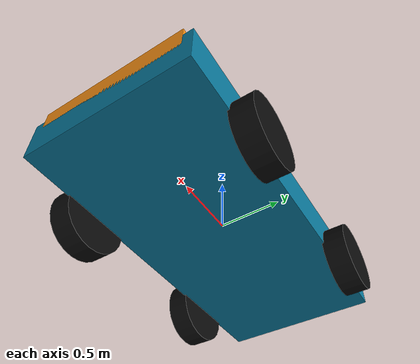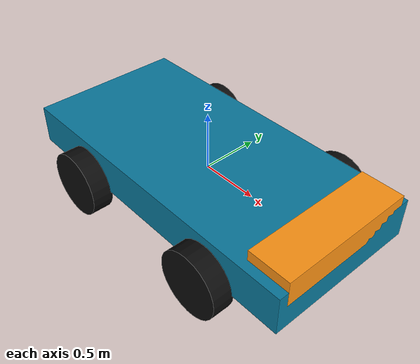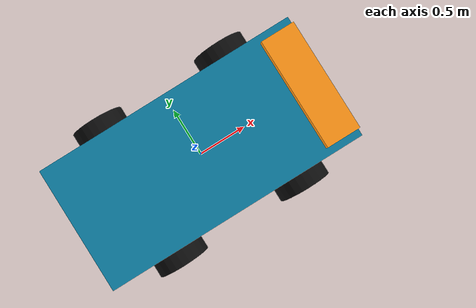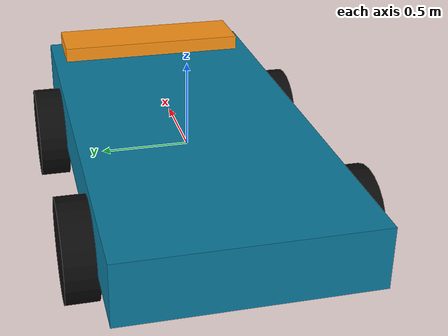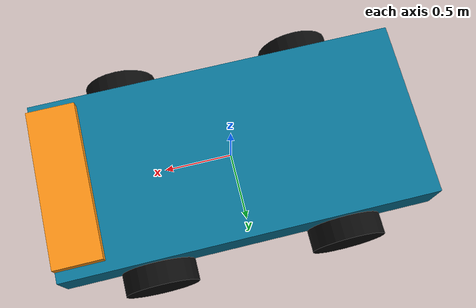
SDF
<?xml version="1.0" encoding="utf-8"?>
<sdf version="1.9">
  <model name="baja_vehicle">
    <self_collide>false</self_collide>
    <allow_auto_disable>false</allow_auto_disable>
    <link name="base_link">
      <pose>0 0 0 0 0 0</pose>
      <inertial>
        <mass>210.0</mass>
        <pose>-0.08 0 0 0 0 0</pose>
        <inertia>
          <ixx>44.84</ixx>
          <iyy>127.58</iyy>
          <izz>149.66</izz>
          <ixy>0</ixy>
          <ixz>0</ixz>
          <iyz>0</iyz>
        </inertia>
      </inertial>
      <collision name="chassis_collision">
        <geometry>
          <box>
            <size>2.80 1.34 0.34</size>
          </box>
        </geometry>
        <surface>
          <contact>
            <ode>
              <kp>800000</kp>
              <kd>200</kd>
            </ode>
          </contact>
        </surface>
      </collision>
      <visual name="chassis_visual">
        <geometry>
          <box>
            <size>2.80 1.34 0.34</size>
          </box>
        </geometry>
        <material>
          <ambient>0.02 0.20 0.28 1</ambient>
          <diffuse>0.04 0.48 0.62 1</diffuse>
          <pbr><metal><roughness>0.42</roughness><metalness>0.18</metalness></metal></pbr>
        </material>
      </visual>
      <visual name="nose_visual">
        <pose>1.22 0 0.15 0 0 0</pose>
        <geometry>
          <box>
            <size>0.36 1.18 0.22</size>
          </box>
        </geometry>
        <material>
          <ambient>0.95 0.42 0.06 1</ambient>
          <diffuse>1.0 0.58 0.08 1</diffuse>
        </material>
      </visual>
      <sensor name="recording_camera" type="camera">
        <pose>-5.0 0 3.0 0 0.48 0</pose>
        <topic>/simulation/recording_camera/image</topic>
        <always_on>true</always_on>
        <update_rate>30</update_rate>
        <visualize>false</visualize>
        <camera>
          <horizontal_fov>1.25</horizontal_fov>
          <image>
            <width>1280</width>
            <height>720</height>
            <format>R8G8B8</format>
          </image>
          <clip>
            <near>0.15</near>
            <far>180.0</far>
          </clip>
        </camera>
      </sensor>
      <sensor name="lidar" type="gpu_lidar">
        <pose relative_to="base_link">0 0 1.5 0 0 0</pose>
        <topic>/lidar/points</topic>
        <always_on>true</always_on>
        <update_rate>10</update_rate>
        <lidar>
          <scan>
            <horizontal>
              <samples>1800</samples>
              <resolution>0.2</resolution>
              <min_angle>-3.14159</min_angle>
              <max_angle>3.14159</max_angle>
            </horizontal>
            <vertical>
              <samples>16</samples>
              <resolution>2</resolution>
              <min_angle>-0.2618</min_angle>
              <max_angle>0.2618</max_angle>
            </vertical>
          </scan>
          <range>
            <min>0.2</min>
            <max>200</max>
            <resolution>0.01</resolution>
          </range>
          <noise>
            <type>gaussian</type>
            <mean>0.0</mean>
            <stddev>0.01</stddev>
          </noise>
        </lidar>
      </sensor>
    </link>
    <link name="rear_left_wheel">
      <pose>-0.715 0.745 -0.178 0 0 0</pose>
      <inertial>
        <mass>8.0</mass>
        <inertia>
          <ixx>0.183</ixx>
          <iyy>0.341</iyy>
          <izz>0.183</izz>
          <ixy>0</ixy>
          <ixz>0</ixz>
          <iyz>0</iyz>
        </inertia>
      </inertial>
      <collision name="tire">
        <pose>0 0 0 1.570796 0 0</pose>
        <geometry>
          <cylinder>
            <radius>0.279</radius>
            <length>0.18</length>
          </cylinder>
        </geometry>
        <surface>
          <friction>
            <ode>
              <mu>1.35</mu>
              <mu2>1.05</mu2>
              <fdir1>1 0 0</fdir1>
            </ode>
          </friction>
          <contact>
            <ode>
              <kp>700000</kp>
              <kd>160</kd>
              <max_vel>0.1</max_vel>
              <min_depth>0.001</min_depth>
            </ode>
          </contact>
        </surface>
      </collision>
      <visual name="tire_visual">
        <pose>0 0 0 1.570796 0 0</pose>
        <geometry>
          <cylinder>
            <radius>0.279</radius>
            <length>0.18</length>
          </cylinder>
        </geometry>
        <material>
          <ambient>0.025 0.025 0.025 1</ambient>
          <diffuse>0.045 0.045 0.045 1</diffuse>
          <pbr><metal><roughness>0.95</roughness><metalness>0.0</metalness></metal></pbr>
        </material>
      </visual>
    </link>
    <link name="rear_right_wheel">
      <pose>-0.715 -0.745 -0.178 0 0 0</pose>
      <inertial>
        <mass>8.0</mass>
        <inertia>
          <ixx>0.183</ixx>
          <iyy>0.341</iyy>
          <izz>0.183</izz>
          <ixy>0</ixy>
          <ixz>0</ixz>
          <iyz>0</iyz>
        </inertia>
      </inertial>
      <collision name="tire">
        <pose>0 0 0 1.570796 0 0</pose>
        <geometry>
          <cylinder>
            <radius>0.279</radius>
            <length>0.18</length>
          </cylinder>
        </geometry>
        <surface>
          <friction>
            <ode>
              <mu>1.35</mu>
              <mu2>1.05</mu2>
              <fdir1>1 0 0</fdir1>
            </ode>
          </friction>
          <contact>
            <ode>
              <kp>700000</kp>
              <kd>160</kd>
              <max_vel>0.1</max_vel>
              <min_depth>0.001</min_depth>
            </ode>
          </contact>
        </surface>
      </collision>
      <visual name="tire_visual">
        <pose>0 0 0 1.570796 0 0</pose>
        <geometry>
          <cylinder>
            <radius>0.279</radius>
            <length>0.18</length>
          </cylinder>
        </geometry>
        <material>
          <ambient>0.025 0.025 0.025 1</ambient>
          <diffuse>0.045 0.045 0.045 1</diffuse>
          <pbr><metal><roughness>0.95</roughness><metalness>0.0</metalness></metal></pbr>
        </material>
      </visual>
    </link>
    <link name="front_left_steering">
      <pose>0.715 0.655 -0.178 0 0 0</pose>
      <inertial>
        <mass>2.0</mass>
        <inertia>
          <ixx>0.01</ixx>
          <iyy>0.01</iyy>
          <izz>0.01</izz>
          <ixy>0</ixy>
          <ixz>0</ixz>
          <iyz>0</iyz>
        </inertia>
      </inertial>
    </link>
    <link name="front_right_steering">
      <pose>0.715 -0.655 -0.178 0 0 0</pose>
      <inertial>
        <mass>2.0</mass>
        <inertia>
          <ixx>0.01</ixx>
          <iyy>0.01</iyy>
          <izz>0.01</izz>
          <ixy>0</ixy>
          <ixz>0</ixz>
          <iyz>0</iyz>
        </inertia>
      </inertial>
    </link>
    <link name="front_left_wheel">
      <pose>0.715 0.745 -0.178 0 0 0</pose>
      <inertial>
        <mass>8.0</mass>
        <inertia>
          <ixx>0.183</ixx>
          <iyy>0.341</iyy>
          <izz>0.183</izz>
          <ixy>0</ixy>
          <ixz>0</ixz>
          <iyz>0</iyz>
        </inertia>
      </inertial>
      <collision name="tire">
        <pose>0 0 0 1.570796 0 0</pose>
        <geometry>
          <cylinder>
            <radius>0.279</radius>
            <length>0.18</length>
          </cylinder>
        </geometry>
        <surface>
          <friction>
            <ode>
              <mu>1.30</mu>
              <mu2>1.00</mu2>
              <fdir1>1 0 0</fdir1>
            </ode>
          </friction>
          <contact>
            <ode>
              <kp>700000</kp>
              <kd>160</kd>
              <max_vel>0.1</max_vel>
              <min_depth>0.001</min_depth>
            </ode>
          </contact>
        </surface>
      </collision>
      <visual name="tire_visual">
        <pose>0 0 0 1.570796 0 0</pose>
        <geometry>
          <cylinder>
            <radius>0.279</radius>
            <length>0.18</length>
          </cylinder>
        </geometry>
        <material>
          <ambient>0.025 0.025 0.025 1</ambient>
          <diffuse>0.045 0.045 0.045 1</diffuse>
          <pbr><metal><roughness>0.95</roughness><metalness>0.0</metalness></metal></pbr>
        </material>
      </visual>
    </link>
    <link name="front_right_wheel">
      <pose>0.715 -0.745 -0.178 0 0 0</pose>
      <inertial>
        <mass>8.0</mass>
        <inertia>
          <ixx>0.183</ixx>
          <iyy>0.341</iyy>
          <izz>0.183</izz>
          <ixy>0</ixy>
          <ixz>0</ixz>
          <iyz>0</iyz>
        </inertia>
      </inertial>
      <collision name="tire">
        <pose>0 0 0 1.570796 0 0</pose>
        <geometry>
          <cylinder>
            <radius>0.279</radius>
            <length>0.18</length>
          </cylinder>
        </geometry>
        <surface>
          <friction>
            <ode>
              <mu>1.30</mu>
              <mu2>1.00</mu2>
              <fdir1>1 0 0</fdir1>
            </ode>
          </friction>
          <contact>
            <ode>
              <kp>700000</kp>
              <kd>160</kd>
              <max_vel>0.1</max_vel>
              <min_depth>0.001</min_depth>
            </ode>
          </contact>
        </surface>
      </collision>
      <visual name="tire_visual">
        <pose>0 0 0 1.570796 0 0</pose>
        <geometry>
          <cylinder>
            <radius>0.279</radius>
            <length>0.18</length>
          </cylinder>
        </geometry>
        <material>
          <ambient>0.025 0.025 0.025 1</ambient>
          <diffuse>0.045 0.045 0.045 1</diffuse>
          <pbr><metal><roughness>0.95</roughness><metalness>0.0</metalness></metal></pbr>
        </material>
      </visual>
    </link>
    <joint name="rear_left_wheel_joint" type="revolute">
      <parent>base_link</parent>
      <child>rear_left_wheel</child>
      <axis>
        <xyz>0 1 0</xyz>
        <dynamics>
          <damping>0.12</damping>
          <friction>0.04</friction>
        </dynamics>
      </axis>
    </joint>
    <joint name="rear_right_wheel_joint" type="revolute">
      <parent>base_link</parent>
      <child>rear_right_wheel</child>
      <axis>
        <xyz>0 1 0</xyz>
        <dynamics>
          <damping>0.12</damping>
          <friction>0.04</friction>
        </dynamics>
      </axis>
    </joint>
    <joint name="front_left_steering_joint" type="revolute">
      <parent>base_link</parent>
      <child>front_left_steering</child>
      <axis>
        <xyz>0 0 1</xyz>
        <limit>
          <lower>-0.70</lower>
          <upper>0.70</upper>
          <effort>180</effort>
          <velocity>2.5</velocity>
        </limit>
        <dynamics>
          <damping>7.0</damping>
          <friction>0.6</friction>
        </dynamics>
      </axis>
    </joint>
    <joint name="front_right_steering_joint" type="revolute">
      <parent>base_link</parent>
      <child>front_right_steering</child>
      <axis>
        <xyz>0 0 1</xyz>
        <limit>
          <lower>-0.70</lower>
          <upper>0.70</upper>
          <effort>180</effort>
          <velocity>2.5</velocity>
        </limit>
        <dynamics>
          <damping>7.0</damping>
          <friction>0.6</friction>
        </dynamics>
      </axis>
    </joint>
    <joint name="front_left_wheel_joint" type="revolute">
      <parent>front_left_steering</parent>
      <child>front_left_wheel</child>
      <axis>
        <xyz>0 1 0</xyz>
        <dynamics>
          <damping>0.08</damping>
          <friction>0.03</friction>
        </dynamics>
      </axis>
    </joint>
    <joint name="front_right_wheel_joint" type="revolute">
      <parent>front_right_steering</parent>
      <child>front_right_wheel</child>
      <axis>
        <xyz>0 1 0</xyz>
        <dynamics>
          <damping>0.08</damping>
          <friction>0.03</friction>
        </dynamics>
      </axis>
    </joint>
    <plugin filename="gz-sim-ackermann-steering-system" name="gz::sim::systems::AckermannSteering">
      <left_joint>rear_left_wheel_joint</left_joint>
      <right_joint>rear_right_wheel_joint</right_joint>
      <left_steering_joint>front_left_steering_joint</left_steering_joint>
      <right_steering_joint>front_right_steering_joint</right_steering_joint>
      <wheel_separation>1.49</wheel_separation>
      <kingpin_width>1.31</kingpin_width>
      <wheel_base>1.43</wheel_base>
      <wheel_radius>0.279</wheel_radius>
      <steering_limit>0.45379</steering_limit>
      <steer_p_gain>18.0</steer_p_gain>
      <min_velocity>-1.0</min_velocity>
      <max_velocity>5.0</max_velocity>
      <min_acceleration>-50.0</min_acceleration>
      <max_acceleration>50.0</max_acceleration>
      <min_jerk>-500.0</min_jerk>
      <max_jerk>500.0</max_jerk>
      <topic>/model/baja_vehicle/cmd_vel</topic>
      <odom_topic>/model/baja_vehicle/wheel_odometry</odom_topic>
      <tf_topic>/model/baja_vehicle/wheel_tf</tf_topic>
      <frame_id>map</frame_id>
      <child_frame_id>base_link</child_frame_id>
      <odom_publish_frequency>50</odom_publish_frequency>
    </plugin>
    <plugin filename="gz-sim-odometry-publisher-system" name="gz::sim::systems::OdometryPublisher">
      <odom_frame>map</odom_frame>
      <robot_base_frame>base_link</robot_base_frame>
      <odom_publish_frequency>50</odom_publish_frequency>
      <odom_topic>/model/baja_vehicle/ground_truth_odometry</odom_topic>
      <odom_covariance_topic>/model/baja_vehicle/ground_truth_odometry_with_covariance</odom_covariance_topic>
      <tf_topic>/model/baja_vehicle/ground_truth_tf</tf_topic>
      <dimensions>3</dimensions>
      <gaussian_noise>0.0</gaussian_noise>
    </plugin>
    <plugin filename="gz-sim-joint-state-publisher-system" name="gz::sim::systems::JointStatePublisher">
      <topic>/model/baja_vehicle/joint_state</topic>
    </plugin>
  </model>
</sdf>
